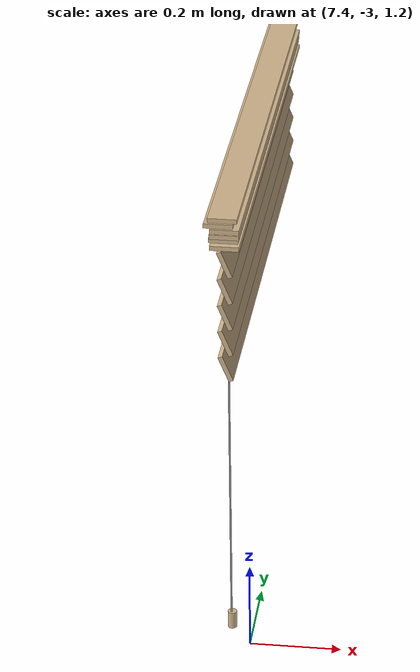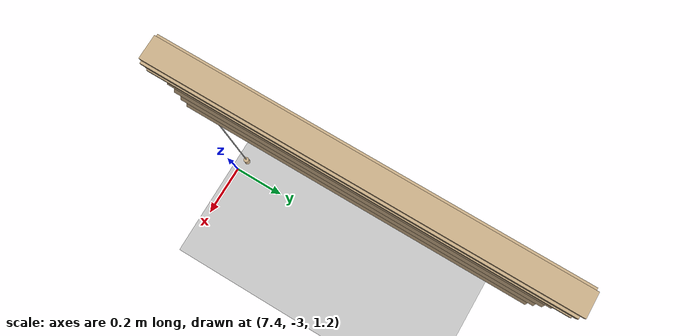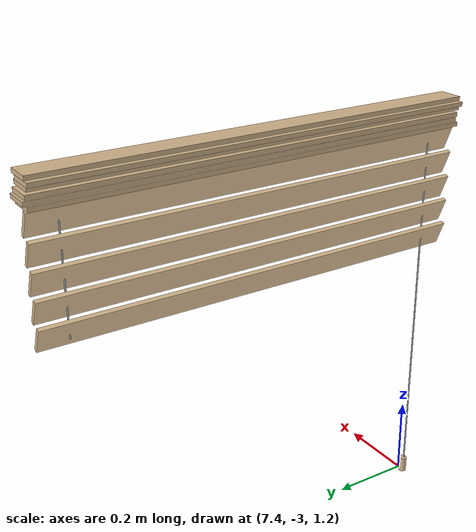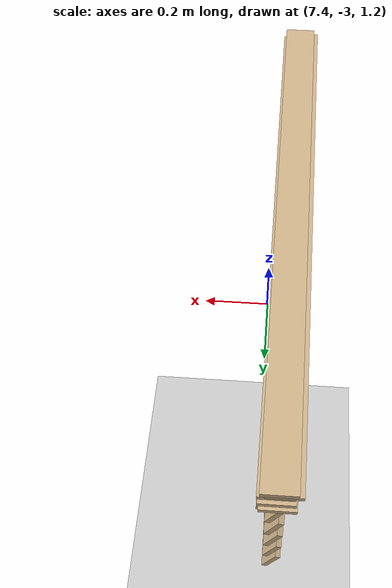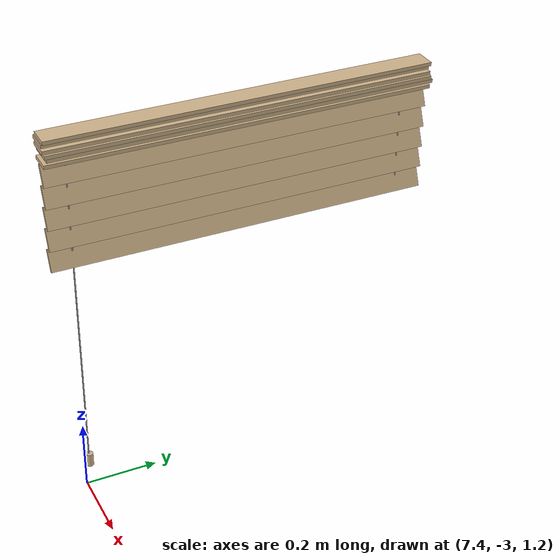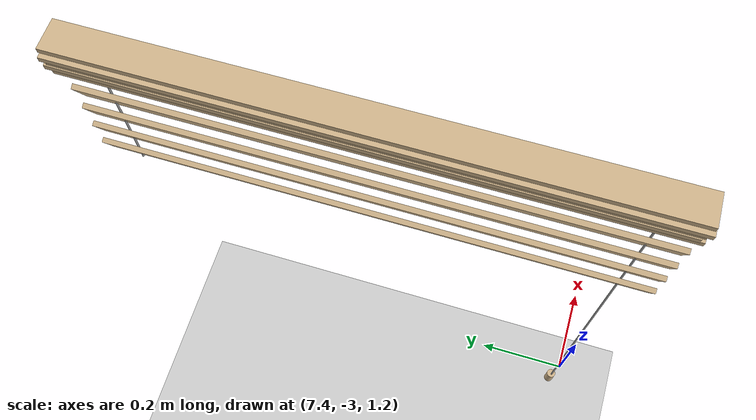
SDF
<sdf version="1.7">
 <world name="default">
  <model name="ground_plane">
   <static>1</static>
   <link name="link">
    <collision name="collision">
     <geometry><plane><normal>0 0 1</normal><size>100 100</size></plane></geometry>
     <surface>
      <contact><collide_bitmask>65535</collide_bitmask></contact>
      <friction><ode><mu>100</mu><mu2>50</mu2></ode></friction>
     </surface>
    </collision>
    <visual name="visual">
     <cast_shadows>0</cast_shadows>
     <geometry><plane><normal>0 0 1</normal><size>100 100</size></plane></geometry>
     <material>
      <script><uri>file://media/materials/scripts/gazebo.material</uri><name>Gazebo/Grey</name></script>
     </material>
    </visual>
   </link>
  </model>
  <model name="my_blinds_0">
   <link name="link">
    <inertial>
     <mass>1</mass>
     <inertia>
      <ixx>0.166667</ixx>
      <ixy>0</ixy>
      <ixz>0</ixz>
      <iyy>0.166667</iyy>
      <iyz>0</iyz>
      <izz>0.166667</izz>
     </inertia>
    </inertial>
    <pose>0.455071 0.017039 0 0 -0 0</pose>
    <visual name="visual">
     <geometry><box><size>0.01 1.05 0.06</size></box></geometry>
     <material>
      <script><name>Gazebo/Grey</name><uri>file://media/materials/scripts/gazebo.material</uri></script>
      <shader type="pixel"><normal_map>__default__</normal_map></shader>
      <ambient>0.82 0.71 0.55 1</ambient>
      <diffuse>0.82 0.71 0.55 1</diffuse>
      <specular>0.01 0.01 0.01 1</specular>
      <emissive>0 0 0 1</emissive>
     </material>
     <pose>0 0 2.187 3.14159 1.57079 3.14159</pose>
    </visual>
    <collision name="collision">
     <pose>0 0 2.187 3.14159 1.57079 3.14159</pose>
     <geometry><box><size>0.01 1.05 0.06</size></box></geometry>
     <surface>
      <friction>
       <ode><mu>1</mu><mu2>1</mu2><fdir1>0 0 0</fdir1><slip1>0</slip1><slip2>0</slip2></ode>
       <torsional>
        <coefficient>1</coefficient>
        <patch_radius>0</patch_radius>
        <surface_radius>0</surface_radius>
        <use_patch_radius>1</use_patch_radius>
        <ode><slip>0</slip></ode>
       </torsional>
      </friction>
      <bounce><restitution_coefficient>0</restitution_coefficient><threshold>1e+06</threshold></bounce>
      <contact>
       <collide_without_contact>0</collide_without_contact>
       <collide_without_contact_bitmask>1</collide_without_contact_bitmask>
       <collide_bitmask>1</collide_bitmask>
       <ode>
        <soft_cfm>0</soft_cfm>
        <soft_erp>0.2</soft_erp>
        <kp>1e+13</kp>
        <kd>1</kd>
        <max_vel>0.01</max_vel>
        <min_depth>0</min_depth>
       </ode>
       <bullet>
        <split_impulse>1</split_impulse>
        <split_impulse_penetration_threshold>-0.01</split_impulse_penetration_threshold>
        <soft_cfm>0</soft_cfm>
        <soft_erp>0.2</soft_erp>
        <kp>1e+13</kp>
        <kd>1</kd>
       </bullet>
      </contact>
     </surface>
    </collision>
   </link>
   <link name="left_rope">
    <inertial>
     <mass>1</mass>
     <inertia><ixx>0.145833</ixx><ixy>0</ixy><ixz>0</ixz><iyy>0.145833</iyy><iyz>0</iyz><izz>0.125</izz></inertia>
    </inertial>
    <pose>0.452907 0.474129 0.827292 0 -0 0</pose>
    <visual name="visual">
     <pose>0 0 1.24 0 -0 0</pose>
     <geometry><cylinder><radius>0.002</radius><length>0.345</length></cylinder></geometry>
     <material>
      <lighting>1</lighting>
      <script><uri>file://media/materials/scripts/gazebo.material</uri><name>Gazebo/Grey</name></script>
      <shader type="pixel"><normal_map>__default__</normal_map></shader>
      <ambient>1 1 1 1</ambient>
      <diffuse>0.8 0.8 0.8 1</diffuse>
      <specular>0.01 0.01 0.01 1</specular>
      <emissive>0 0 0 1</emissive>
     </material>
    </visual>
    <collision name="collision">
     <pose>0 0 1.24 0 -0 0</pose>
     <geometry><cylinder><radius>0.002</radius><length>0.345</length></cylinder></geometry>
     <surface>
      <friction>
       <ode><mu>1</mu><mu2>1</mu2><fdir1>0 0 0</fdir1><slip1>0</slip1><slip2>0</slip2></ode>
       <torsional>
        <coefficient>1</coefficient>
        <patch_radius>0</patch_radius>
        <surface_radius>0</surface_radius>
        <use_patch_radius>1</use_patch_radius>
        <ode><slip>0</slip></ode>
       </torsional>
      </friction>
      <bounce><restitution_coefficient>0</restitution_coefficient><threshold>1e+06</threshold></bounce>
      <contact>
       <collide_without_contact>0</collide_without_contact>
       <collide_without_contact_bitmask>1</collide_without_contact_bitmask>
       <collide_bitmask>1</collide_bitmask>
       <ode>
        <soft_cfm>0</soft_cfm>
        <soft_erp>0.2</soft_erp>
        <kp>1e+13</kp>
        <kd>1</kd>
        <max_vel>0.01</max_vel>
        <min_depth>0</min_depth>
       </ode>
       <bullet>
        <split_impulse>1</split_impulse>
        <split_impulse_penetration_threshold>-0.01</split_impulse_penetration_threshold>
        <soft_cfm>0</soft_cfm>
        <soft_erp>0.2</soft_erp>
        <kp>1e+13</kp>
        <kd>1</kd>
       </bullet>
      </contact>
     </surface>
    </collision>
   </link>
   <link name="link_1">
    <inertial>
     <mass>1</mass>
     <inertia>
      <ixx>0.166667</ixx>
      <ixy>0</ixy>
      <ixz>0</ixz>
      <iyy>0.166667</iyy>
      <iyz>0</iyz>
      <izz>0.166667</izz>
     </inertia>
    </inertial>
    <pose>0.455071 0.017039 0 0 -0 0</pose>
    <visual name="visual">
     <geometry><box><size>0.01 1.05 0.06</size></box></geometry>
     <material>
      <script><name>Gazebo/Grey</name><uri>file://media/materials/scripts/gazebo.material</uri></script>
      <shader type="pixel"><normal_map>__default__</normal_map></shader>
      <ambient>0.82 0.71 0.55 1</ambient>
      <diffuse>0.82 0.71 0.55 1</diffuse>
      <specular>0.01 0.01 0.01 1</specular>
      <emissive>0 0 0 1</emissive>
     </material>
     <pose>0 0 2.15 0 -0.39 0</pose>
    </visual>
    <collision name="collision">
     <pose>0 0 2.15 0 -0.39 0</pose>
     <geometry><box><size>0.01 1.05 0.06</size></box></geometry>
     <surface>
      <friction>
       <ode><mu>1</mu><mu2>1</mu2><fdir1>0 0 0</fdir1><slip1>0</slip1><slip2>0</slip2></ode>
       <torsional>
        <coefficient>1</coefficient>
        <patch_radius>0</patch_radius>
        <surface_radius>0</surface_radius>
        <use_patch_radius>1</use_patch_radius>
        <ode><slip>0</slip></ode>
       </torsional>
      </friction>
      <bounce><restitution_coefficient>0</restitution_coefficient><threshold>1e+06</threshold></bounce>
      <contact>
       <collide_without_contact>0</collide_without_contact>
       <collide_without_contact_bitmask>1</collide_without_contact_bitmask>
       <collide_bitmask>1</collide_bitmask>
       <ode>
        <soft_cfm>0</soft_cfm>
        <soft_erp>0.2</soft_erp>
        <kp>1e+13</kp>
        <kd>1</kd>
        <max_vel>0.01</max_vel>
        <min_depth>0</min_depth>
       </ode>
       <bullet>
        <split_impulse>1</split_impulse>
        <split_impulse_penetration_threshold>-0.01</split_impulse_penetration_threshold>
        <soft_cfm>0</soft_cfm>
        <soft_erp>0.2</soft_erp>
        <kp>1e+13</kp>
        <kd>1</kd>
       </bullet>
      </contact>
     </surface>
    </collision>
   </link>
   <link name="link_1_0">
    <inertial>
     <mass>1</mass>
     <inertia><ixx>0.145833</ixx><ixy>0</ixy><ixz>0</ixz><iyy>0.145833</iyy><iyz>0</iyz><izz>0.125</izz></inertia>
    </inertial>
    <pose>0.454407 -0.443789 1.24533 0 -0 0</pose>
    <visual name="visual">
     <geometry><cylinder><radius>0.01</radius><length>0.04</length></cylinder></geometry>
     <material>
      <lighting>1</lighting>
      <script><uri>file://media/materials/scripts/gazebo.material</uri><name>Gazebo/Grey</name></script>
      <shader type="pixel"><normal_map>__default__</normal_map></shader>
      <ambient>0.82 0.71 0.55 1</ambient>
      <diffuse>0.82 0.71 0.55 1</diffuse>
      <specular>0.01 0.01 0.01 1</specular>
      <emissive>0 0 0 1</emissive>
     </material>
    </visual>
    <collision name="collision">
     <geometry><cylinder><radius>0.01</radius><length>0.04</length></cylinder></geometry>
     <surface>
      <friction>
       <ode><mu>1</mu><mu2>1</mu2><fdir1>0 0 0</fdir1><slip1>0</slip1><slip2>0</slip2></ode>
       <torsional>
        <coefficient>1</coefficient>
        <patch_radius>0</patch_radius>
        <surface_radius>0</surface_radius>
        <use_patch_radius>1</use_patch_radius>
        <ode><slip>0</slip></ode>
       </torsional>
      </friction>
      <bounce><restitution_coefficient>0</restitution_coefficient><threshold>1e+06</threshold></bounce>
      <contact>
       <collide_without_contact>0</collide_without_contact>
       <collide_without_contact_bitmask>1</collide_without_contact_bitmask>
       <collide_bitmask>1</collide_bitmask>
       <ode>
        <soft_cfm>0</soft_cfm>
        <soft_erp>0.2</soft_erp>
        <kp>1e+13</kp>
        <kd>1</kd>
        <max_vel>0.01</max_vel>
        <min_depth>0</min_depth>
       </ode>
       <bullet>
        <split_impulse>1</split_impulse>
        <split_impulse_penetration_threshold>-0.01</split_impulse_penetration_threshold>
        <soft_cfm>0</soft_cfm>
        <soft_erp>0.2</soft_erp>
        <kp>1e+13</kp>
        <kd>1</kd>
       </bullet>
      </contact>
     </surface>
    </collision>
   </link>
   <link name="link_2">
    <inertial>
     <mass>1</mass>
     <inertia>
      <ixx>0.166667</ixx>
      <ixy>0</ixy>
      <ixz>0</ixz>
      <iyy>0.166667</iyy>
      <iyz>0</iyz>
      <izz>0.166667</izz>
     </inertia>
    </inertial>
    <pose>0.455071 0.017039 0 0 -0 0</pose>
    <visual name="visual">
     <geometry><box><size>0.01 1.05 0.06</size></box></geometry>
     <material>
      <script><name>Gazebo/Grey</name><uri>file://media/materials/scripts/gazebo.material</uri></script>
      <shader type="pixel"><normal_map>__default__</normal_map></shader>
      <ambient>0.82 0.71 0.55 1</ambient>
      <diffuse>0.82 0.71 0.55 1</diffuse>
      <specular>0.01 0.01 0.01 1</specular>
      <emissive>0 0 0 1</emissive>
     </material>
     <pose>0 0 2.09 0 -0.39 0</pose>
    </visual>
    <collision name="collision">
     <pose>0 0 2.09 0 -0.39 0</pose>
     <geometry><box><size>0.01 1.05 0.06</size></box></geometry>
     <surface>
      <friction>
       <ode><mu>1</mu><mu2>1</mu2><fdir1>0 0 0</fdir1><slip1>0</slip1><slip2>0</slip2></ode>
       <torsional>
        <coefficient>1</coefficient>
        <patch_radius>0</patch_radius>
        <surface_radius>0</surface_radius>
        <use_patch_radius>1</use_patch_radius>
        <ode><slip>0</slip></ode>
       </torsional>
      </friction>
      <bounce><restitution_coefficient>0</restitution_coefficient><threshold>1e+06</threshold></bounce>
      <contact>
       <collide_without_contact>0</collide_without_contact>
       <collide_without_contact_bitmask>1</collide_without_contact_bitmask>
       <collide_bitmask>1</collide_bitmask>
       <ode>
        <soft_cfm>0</soft_cfm>
        <soft_erp>0.2</soft_erp>
        <kp>1e+13</kp>
        <kd>1</kd>
        <max_vel>0.01</max_vel>
        <min_depth>0</min_depth>
       </ode>
       <bullet>
        <split_impulse>1</split_impulse>
        <split_impulse_penetration_threshold>-0.01</split_impulse_penetration_threshold>
        <soft_cfm>0</soft_cfm>
        <soft_erp>0.2</soft_erp>
        <kp>1e+13</kp>
        <kd>1</kd>
       </bullet>
      </contact>
     </surface>
    </collision>
   </link>
   <link name="link_3">
    <inertial>
     <mass>1</mass>
     <inertia>
      <ixx>0.166667</ixx>
      <ixy>0</ixy>
      <ixz>0</ixz>
      <iyy>0.166667</iyy>
      <iyz>0</iyz>
      <izz>0.166667</izz>
     </inertia>
    </inertial>
    <pose>0.455071 0.017039 0 0 -0 0</pose>
    <visual name="visual">
     <geometry><box><size>0.01 1.05 0.06</size></box></geometry>
     <material>
      <script><name>Gazebo/Grey</name><uri>file://media/materials/scripts/gazebo.material</uri></script>
      <shader type="pixel"><normal_map>__default__</normal_map></shader>
      <ambient>0.82 0.71 0.55 1</ambient>
      <diffuse>0.82 0.71 0.55 1</diffuse>
      <specular>0.01 0.01 0.01 1</specular>
      <emissive>0 0 0 1</emissive>
     </material>
     <pose>0 0 2.03 0 -0.39 0</pose>
    </visual>
    <collision name="collision">
     <pose>0 0 2.03 0 -0.39 0</pose>
     <geometry><box><size>0.01 1.05 0.06</size></box></geometry>
     <surface>
      <friction>
       <ode><mu>1</mu><mu2>1</mu2><fdir1>0 0 0</fdir1><slip1>0</slip1><slip2>0</slip2></ode>
       <torsional>
        <coefficient>1</coefficient>
        <patch_radius>0</patch_radius>
        <surface_radius>0</surface_radius>
        <use_patch_radius>1</use_patch_radius>
        <ode><slip>0</slip></ode>
       </torsional>
      </friction>
      <bounce><restitution_coefficient>0</restitution_coefficient><threshold>1e+06</threshold></bounce>
      <contact>
       <collide_without_contact>0</collide_without_contact>
       <collide_without_contact_bitmask>1</collide_without_contact_bitmask>
       <collide_bitmask>1</collide_bitmask>
       <ode>
        <soft_cfm>0</soft_cfm>
        <soft_erp>0.2</soft_erp>
        <kp>1e+13</kp>
        <kd>1</kd>
        <max_vel>0.01</max_vel>
        <min_depth>0</min_depth>
       </ode>
       <bullet>
        <split_impulse>1</split_impulse>
        <split_impulse_penetration_threshold>-0.01</split_impulse_penetration_threshold>
        <soft_cfm>0</soft_cfm>
        <soft_erp>0.2</soft_erp>
        <kp>1e+13</kp>
        <kd>1</kd>
       </bullet>
      </contact>
     </surface>
    </collision>
   </link>
   <link name="link_4">
    <inertial>
     <mass>1</mass>
     <inertia>
      <ixx>0.166667</ixx>
      <ixy>0</ixy>
      <ixz>0</ixz>
      <iyy>0.166667</iyy>
      <iyz>0</iyz>
      <izz>0.166667</izz>
     </inertia>
    </inertial>
    <pose>0.455071 0.017039 0 0 -0 0</pose>
    <visual name="visual">
     <geometry><box><size>0.01 1.05 0.06</size></box></geometry>
     <material>
      <script><name>Gazebo/Grey</name><uri>file://media/materials/scripts/gazebo.material</uri></script>
      <shader type="pixel"><normal_map>__default__</normal_map></shader>
      <ambient>0.82 0.71 0.55 1</ambient>
      <diffuse>0.82 0.71 0.55 1</diffuse>
      <specular>0.01 0.01 0.01 1</specular>
      <emissive>0 0 0 1</emissive>
     </material>
     <pose>0 0 1.97 0 -0.39 0</pose>
    </visual>
    <collision name="collision">
     <pose>0 0 1.97 0 -0.39 0</pose>
     <geometry><box><size>0.01 1.05 0.06</size></box></geometry>
     <surface>
      <friction>
       <ode><mu>1</mu><mu2>1</mu2><fdir1>0 0 0</fdir1><slip1>0</slip1><slip2>0</slip2></ode>
       <torsional>
        <coefficient>1</coefficient>
        <patch_radius>0</patch_radius>
        <surface_radius>0</surface_radius>
        <use_patch_radius>1</use_patch_radius>
        <ode><slip>0</slip></ode>
       </torsional>
      </friction>
      <bounce><restitution_coefficient>0</restitution_coefficient><threshold>1e+06</threshold></bounce>
      <contact>
       <collide_without_contact>0</collide_without_contact>
       <collide_without_contact_bitmask>1</collide_without_contact_bitmask>
       <collide_bitmask>1</collide_bitmask>
       <ode>
        <soft_cfm>0</soft_cfm>
        <soft_erp>0.2</soft_erp>
        <kp>1e+13</kp>
        <kd>1</kd>
        <max_vel>0.01</max_vel>
        <min_depth>0</min_depth>
       </ode>
       <bullet>
        <split_impulse>1</split_impulse>
        <split_impulse_penetration_threshold>-0.01</split_impulse_penetration_threshold>
        <soft_cfm>0</soft_cfm>
        <soft_erp>0.2</soft_erp>
        <kp>1e+13</kp>
        <kd>1</kd>
       </bullet>
      </contact>
     </surface>
    </collision>
   </link>
   <link name="link_5">
    <inertial>
     <mass>1</mass>
     <inertia>
      <ixx>0.166667</ixx>
      <ixy>0</ixy>
      <ixz>0</ixz>
      <iyy>0.166667</iyy>
      <iyz>0</iyz>
      <izz>0.166667</izz>
     </inertia>
    </inertial>
    <pose>0.455071 0.017039 0 0 -0 0</pose>
    <visual name="visual">
     <geometry><box><size>0.01 1.05 0.06</size></box></geometry>
     <material>
      <script><name>Gazebo/Grey</name><uri>file://media/materials/scripts/gazebo.material</uri></script>
      <shader type="pixel"><normal_map>__default__</normal_map></shader>
      <ambient>0.82 0.71 0.55 1</ambient>
      <diffuse>0.82 0.71 0.55 1</diffuse>
      <specular>0.01 0.01 0.01 1</specular>
      <emissive>0 0 0 1</emissive>
     </material>
     <pose>0 0 1.91 0 -0.39 0</pose>
    </visual>
    <collision name="collision">
     <pose>0 0 1.91 0 -0.39 0</pose>
     <geometry><box><size>0.01 1.05 0.06</size></box></geometry>
     <surface>
      <friction>
       <ode><mu>1</mu><mu2>1</mu2><fdir1>0 0 0</fdir1><slip1>0</slip1><slip2>0</slip2></ode>
       <torsional>
        <coefficient>1</coefficient>
        <patch_radius>0</patch_radius>
        <surface_radius>0</surface_radius>
        <use_patch_radius>1</use_patch_radius>
        <ode><slip>0</slip></ode>
       </torsional>
      </friction>
      <bounce><restitution_coefficient>0</restitution_coefficient><threshold>1e+06</threshold></bounce>
      <contact>
       <collide_without_contact>0</collide_without_contact>
       <collide_without_contact_bitmask>1</collide_without_contact_bitmask>
       <collide_bitmask>1</collide_bitmask>
       <ode>
        <soft_cfm>0</soft_cfm>
        <soft_erp>0.2</soft_erp>
        <kp>1e+13</kp>
        <kd>1</kd>
        <max_vel>0.01</max_vel>
        <min_depth>0</min_depth>
       </ode>
       <bullet>
        <split_impulse>1</split_impulse>
        <split_impulse_penetration_threshold>-0.01</split_impulse_penetration_threshold>
        <soft_cfm>0</soft_cfm>
        <soft_erp>0.2</soft_erp>
        <kp>1e+13</kp>
        <kd>1</kd>
       </bullet>
      </contact>
     </surface>
    </collision>
   </link>
   <link name="link_clone">
    <inertial>
     <mass>1</mass>
     <inertia>
      <ixx>0.166667</ixx>
      <ixy>0</ixy>
      <ixz>0</ixz>
      <iyy>0.166667</iyy>
      <iyz>0</iyz>
      <izz>0.166667</izz>
     </inertia>
    </inertial>
    <pose>0.452148 0.026043 0.012868 0 -0 0</pose>
    <visual name="visual">
     <geometry><box><size>0.01 1.05 0.06</size></box></geometry>
     <material>
      <script><name>Gazebo/Grey</name><uri>file://media/materials/scripts/gazebo.material</uri></script>
      <shader type="pixel"><normal_map>__default__</normal_map></shader>
      <ambient>0.82 0.71 0.55 1</ambient>
      <diffuse>0.82 0.71 0.55 1</diffuse>
      <specular>0.01 0.01 0.01 1</specular>
      <emissive>0 0 0 1</emissive>
     </material>
     <pose>0 0 2.187 3.14159 1.57079 3.14159</pose>
    </visual>
    <collision name="collision">
     <pose>0 0 2.187 3.14159 1.57079 3.14159</pose>
     <geometry><box><size>0.01 1.05 0.06</size></box></geometry>
     <surface>
      <friction>
       <ode><mu>1</mu><mu2>1</mu2><fdir1>0 0 0</fdir1><slip1>0</slip1><slip2>0</slip2></ode>
       <torsional>
        <coefficient>1</coefficient>
        <patch_radius>0</patch_radius>
        <surface_radius>0</surface_radius>
        <use_patch_radius>1</use_patch_radius>
        <ode><slip>0</slip></ode>
       </torsional>
      </friction>
      <bounce><restitution_coefficient>0</restitution_coefficient><threshold>1e+06</threshold></bounce>
      <contact>
       <collide_without_contact>0</collide_without_contact>
       <collide_without_contact_bitmask>1</collide_without_contact_bitmask>
       <collide_bitmask>1</collide_bitmask>
       <ode>
        <soft_cfm>0</soft_cfm>
        <soft_erp>0.2</soft_erp>
        <kp>1e+13</kp>
        <kd>1</kd>
        <max_vel>0.01</max_vel>
        <min_depth>0</min_depth>
       </ode>
       <bullet>
        <split_impulse>1</split_impulse>
        <split_impulse_penetration_threshold>-0.01</split_impulse_penetration_threshold>
        <soft_cfm>0</soft_cfm>
        <soft_erp>0.2</soft_erp>
        <kp>1e+13</kp>
        <kd>1</kd>
       </bullet>
      </contact>
     </surface>
    </collision>
   </link>
   <link name="link_clone_clone">
    <inertial>
     <mass>1</mass>
     <inertia>
      <ixx>0.166667</ixx>
      <ixy>0</ixy>
      <ixz>0</ixz>
      <iyy>0.166667</iyy>
      <iyz>0</iyz>
      <izz>0.166667</izz>
     </inertia>
    </inertial>
    <pose>0.454154 0.020509 0.023586 0 -0 0</pose>
    <visual name="visual">
     <geometry><box><size>0.01 1.05 0.06</size></box></geometry>
     <material>
      <script><name>Gazebo/Grey</name><uri>file://media/materials/scripts/gazebo.material</uri></script>
      <shader type="pixel"><normal_map>__default__</normal_map></shader>
      <ambient>0.82 0.71 0.55 1</ambient>
      <diffuse>0.82 0.71 0.55 1</diffuse>
      <specular>0.01 0.01 0.01 1</specular>
      <emissive>0 0 0 1</emissive>
     </material>
     <pose>0 0 2.187 3.14159 1.57079 3.14159</pose>
    </visual>
    <collision name="collision">
     <pose>0 0 2.187 3.14159 1.57079 3.14159</pose>
     <geometry><box><size>0.01 1.05 0.06</size></box></geometry>
     <surface>
      <friction>
       <ode><mu>1</mu><mu2>1</mu2><fdir1>0 0 0</fdir1><slip1>0</slip1><slip2>0</slip2></ode>
       <torsional>
        <coefficient>1</coefficient>
        <patch_radius>0</patch_radius>
        <surface_radius>0</surface_radius>
        <use_patch_radius>1</use_patch_radius>
        <ode><slip>0</slip></ode>
       </torsional>
      </friction>
      <bounce><restitution_coefficient>0</restitution_coefficient><threshold>1e+06</threshold></bounce>
      <contact>
       <collide_without_contact>0</collide_without_contact>
       <collide_without_contact_bitmask>1</collide_without_contact_bitmask>
       <collide_bitmask>1</collide_bitmask>
       <ode>
        <soft_cfm>0</soft_cfm>
        <soft_erp>0.2</soft_erp>
        <kp>1e+13</kp>
        <kd>1</kd>
        <max_vel>0.01</max_vel>
        <min_depth>0</min_depth>
       </ode>
       <bullet>
        <split_impulse>1</split_impulse>
        <split_impulse_penetration_threshold>-0.01</split_impulse_penetration_threshold>
        <soft_cfm>0</soft_cfm>
        <soft_erp>0.2</soft_erp>
        <kp>1e+13</kp>
        <kd>1</kd>
       </bullet>
      </contact>
     </surface>
    </collision>
   </link>
   <link name="link_clone_clone_clone">
    <inertial>
     <mass>1</mass>
     <inertia>
      <ixx>0.166667</ixx>
      <ixy>0</ixy>
      <ixz>0</ixz>
      <iyy>0.166667</iyy>
      <iyz>0</iyz>
      <izz>0.166667</izz>
     </inertia>
    </inertial>
    <pose>0.455421 0.015468 0.038005 0 -0 0</pose>
    <visual name="visual">
     <geometry><box><size>0.01 1.05 0.06</size></box></geometry>
     <material>
      <script><name>Gazebo/Grey</name><uri>file://media/materials/scripts/gazebo.material</uri></script>
      <shader type="pixel"><normal_map>__default__</normal_map></shader>
      <ambient>0.82 0.71 0.55 1</ambient>
      <diffuse>0.82 0.71 0.55 1</diffuse>
      <specular>0.01 0.01 0.01 1</specular>
      <emissive>0 0 0 1</emissive>
     </material>
     <pose>0 0 2.187 3.14159 1.57079 3.14159</pose>
    </visual>
    <collision name="collision">
     <pose>0 0 2.187 3.14159 1.57079 3.14159</pose>
     <geometry><box><size>0.01 1.05 0.06</size></box></geometry>
     <surface>
      <friction>
       <ode><mu>1</mu><mu2>1</mu2><fdir1>0 0 0</fdir1><slip1>0</slip1><slip2>0</slip2></ode>
       <torsional>
        <coefficient>1</coefficient>
        <patch_radius>0</patch_radius>
        <surface_radius>0</surface_radius>
        <use_patch_radius>1</use_patch_radius>
        <ode><slip>0</slip></ode>
       </torsional>
      </friction>
      <bounce><restitution_coefficient>0</restitution_coefficient><threshold>1e+06</threshold></bounce>
      <contact>
       <collide_without_contact>0</collide_without_contact>
       <collide_without_contact_bitmask>1</collide_without_contact_bitmask>
       <collide_bitmask>1</collide_bitmask>
       <ode>
        <soft_cfm>0</soft_cfm>
        <soft_erp>0.2</soft_erp>
        <kp>1e+13</kp>
        <kd>1</kd>
        <max_vel>0.01</max_vel>
        <min_depth>0</min_depth>
       </ode>
       <bullet>
        <split_impulse>1</split_impulse>
        <split_impulse_penetration_threshold>-0.01</split_impulse_penetration_threshold>
        <soft_cfm>0</soft_cfm>
        <soft_erp>0.2</soft_erp>
        <kp>1e+13</kp>
        <kd>1</kd>
       </bullet>
      </contact>
     </surface>
    </collision>
   </link>
   <link name="link_clone_clone_clone_clone">
    <inertial>
     <mass>1</mass>
     <inertia>
      <ixx>0.166667</ixx>
      <ixy>0</ixy>
      <ixz>0</ixz>
      <iyy>0.166667</iyy>
      <iyz>0</iyz>
      <izz>0.166667</izz>
     </inertia>
    </inertial>
    <pose>0.442992 0.017715 0.049194 0 -0 0</pose>
    <visual name="visual">
     <geometry><box><size>0.01 1.05 0.06</size></box></geometry>
     <material>
      <script><name>Gazebo/Grey</name><uri>file://media/materials/scripts/gazebo.material</uri></script>
      <shader type="pixel"><normal_map>__default__</normal_map></shader>
      <ambient>0.82 0.71 0.55 1</ambient>
      <diffuse>0.82 0.71 0.55 1</diffuse>
      <specular>0.01 0.01 0.01 1</specular>
      <emissive>0 0 0 1</emissive>
     </material>
     <pose>0 0 2.187 3.14159 1.57079 3.14159</pose>
    </visual>
    <collision name="collision">
     <pose>0 0 2.187 3.14159 1.57079 3.14159</pose>
     <geometry><box><size>0.01 1.05 0.06</size></box></geometry>
     <surface>
      <friction>
       <ode><mu>1</mu><mu2>1</mu2><fdir1>0 0 0</fdir1><slip1>0</slip1><slip2>0</slip2></ode>
       <torsional>
        <coefficient>1</coefficient>
        <patch_radius>0</patch_radius>
        <surface_radius>0</surface_radius>
        <use_patch_radius>1</use_patch_radius>
        <ode><slip>0</slip></ode>
       </torsional>
      </friction>
      <bounce><restitution_coefficient>0</restitution_coefficient><threshold>1e+06</threshold></bounce>
      <contact>
       <collide_without_contact>0</collide_without_contact>
       <collide_without_contact_bitmask>1</collide_without_contact_bitmask>
       <collide_bitmask>1</collide_bitmask>
       <ode>
        <soft_cfm>0</soft_cfm>
        <soft_erp>0.2</soft_erp>
        <kp>1e+13</kp>
        <kd>1</kd>
        <max_vel>0.01</max_vel>
        <min_depth>0</min_depth>
       </ode>
       <bullet>
        <split_impulse>1</split_impulse>
        <split_impulse_penetration_threshold>-0.01</split_impulse_penetration_threshold>
        <soft_cfm>0</soft_cfm>
        <soft_erp>0.2</soft_erp>
        <kp>1e+13</kp>
        <kd>1</kd>
       </bullet>
      </contact>
     </surface>
    </collision>
   </link>
   <link name="link_clone_clone_clone_clone_clone">
    <inertial>
     <mass>1</mass>
     <inertia>
      <ixx>0.166667</ixx>
      <ixy>0</ixy>
      <ixz>0</ixz>
      <iyy>0.166667</iyy>
      <iyz>0</iyz>
      <izz>0.166667</izz>
     </inertia>
    </inertial>
    <pose>0.451065 0.019395 0.060777 0 -0 0</pose>
    <visual name="visual">
     <geometry><box><size>0.01 1.05 0.06</size></box></geometry>
     <material>
      <script><name>Gazebo/Grey</name><uri>file://media/materials/scripts/gazebo.material</uri></script>
      <shader type="pixel"><normal_map>__default__</normal_map></shader>
      <ambient>0.82 0.71 0.55 1</ambient>
      <diffuse>0.82 0.71 0.55 1</diffuse>
      <specular>0.01 0.01 0.01 1</specular>
      <emissive>0 0 0 1</emissive>
     </material>
     <pose>0 0 2.187 3.14159 1.57079 3.14159</pose>
    </visual>
    <collision name="collision">
     <pose>0 0 2.187 3.14159 1.57079 3.14159</pose>
     <geometry><box><size>0.01 1.05 0.06</size></box></geometry>
     <surface>
      <friction>
       <ode><mu>1</mu><mu2>1</mu2><fdir1>0 0 0</fdir1><slip1>0</slip1><slip2>0</slip2></ode>
       <torsional>
        <coefficient>1</coefficient>
        <patch_radius>0</patch_radius>
        <surface_radius>0</surface_radius>
        <use_patch_radius>1</use_patch_radius>
        <ode><slip>0</slip></ode>
       </torsional>
      </friction>
      <bounce><restitution_coefficient>0</restitution_coefficient><threshold>1e+06</threshold></bounce>
      <contact>
       <collide_without_contact>0</collide_without_contact>
       <collide_without_contact_bitmask>1</collide_without_contact_bitmask>
       <collide_bitmask>1</collide_bitmask>
       <ode>
        <soft_cfm>0</soft_cfm>
        <soft_erp>0.2</soft_erp>
        <kp>1e+13</kp>
        <kd>1</kd>
        <max_vel>0.01</max_vel>
        <min_depth>0</min_depth>
       </ode>
       <bullet>
        <split_impulse>1</split_impulse>
        <split_impulse_penetration_threshold>-0.01</split_impulse_penetration_threshold>
        <soft_cfm>0</soft_cfm>
        <soft_erp>0.2</soft_erp>
        <kp>1e+13</kp>
        <kd>1</kd>
       </bullet>
      </contact>
     </surface>
    </collision>
   </link>
   <link name="right_rope">
    <inertial>
     <mass>1</mass>
     <inertia><ixx>0.145833</ixx><ixy>0</ixy><ixz>0</ixz><iyy>0.145833</iyy><iyz>0</iyz><izz>0.125</izz></inertia>
    </inertial>
    <pose>0.452907 -0.445289 0.5 0 -0 0</pose>
    <visual name="visual">
     <pose>0 0 1.24 0 -0 0</pose>
     <geometry><cylinder><radius>0.002</radius><length>1</length></cylinder></geometry>
     <material>
      <lighting>1</lighting>
      <script><uri>file://media/materials/scripts/gazebo.material</uri><name>Gazebo/Grey</name></script>
      <shader type="pixel"><normal_map>__default__</normal_map></shader>
      <ambient>1 1 1 1</ambient>
      <diffuse>0.8 0.8 0.8 1</diffuse>
      <specular>0.01 0.01 0.01 1</specular>
      <emissive>0 0 0 1</emissive>
     </material>
    </visual>
    <collision name="collision">
     <pose>0 0 1.24 0 -0 0</pose>
     <geometry><cylinder><radius>0.002</radius><length>1</length></cylinder></geometry>
     <surface>
      <friction>
       <ode><mu>1</mu><mu2>1</mu2><fdir1>0 0 0</fdir1><slip1>0</slip1><slip2>0</slip2></ode>
       <torsional>
        <coefficient>1</coefficient>
        <patch_radius>0</patch_radius>
        <surface_radius>0</surface_radius>
        <use_patch_radius>1</use_patch_radius>
        <ode><slip>0</slip></ode>
       </torsional>
      </friction>
      <bounce><restitution_coefficient>0</restitution_coefficient><threshold>1e+06</threshold></bounce>
      <contact>
       <collide_without_contact>0</collide_without_contact>
       <collide_without_contact_bitmask>1</collide_without_contact_bitmask>
       <collide_bitmask>1</collide_bitmask>
       <ode>
        <soft_cfm>0</soft_cfm>
        <soft_erp>0.2</soft_erp>
        <kp>1e+13</kp>
        <kd>1</kd>
        <max_vel>0.01</max_vel>
        <min_depth>0</min_depth>
       </ode>
       <bullet>
        <split_impulse>1</split_impulse>
        <split_impulse_penetration_threshold>-0.01</split_impulse_penetration_threshold>
        <soft_cfm>0</soft_cfm>
        <soft_erp>0.2</soft_erp>
        <kp>1e+13</kp>
        <kd>1</kd>
       </bullet>
      </contact>
     </surface>
    </collision>
   </link>
   <static>1</static>
   <pose>6.90329 -2.53097 0 0 -0 0</pose>
  </model>
 </world>
</sdf>
